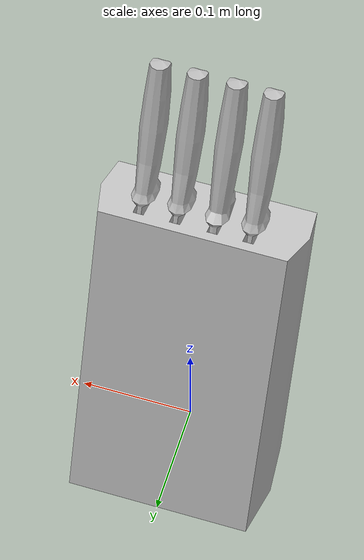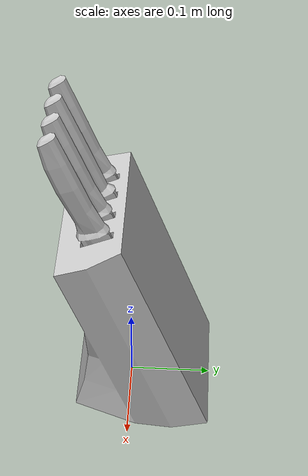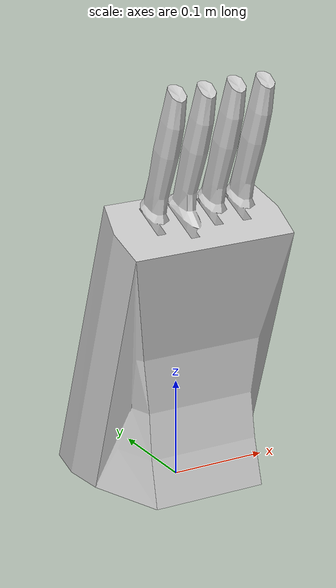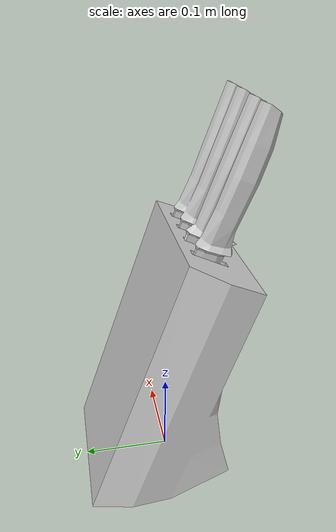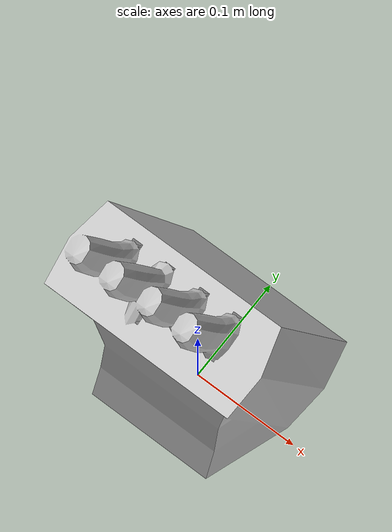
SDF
<?xml version='1.0'?>
<sdf version="1.4">
	<model name="knives">
		<static>1</static>
		<link name="link">
			<visual name="mesh">
				<geometry>
					<mesh>
						<uri>model://meshes/knives.dae</uri>
					</mesh>
				</geometry>
			</visual>
			<collision name="collider">
				<pose>0 0 0 0 0 0</pose>
				<geometry>
					<mesh>
						<uri>model://meshes/knives_collision.stl</uri>
					</mesh>
				</geometry>
			</collision>
		</link>
	</model>
</sdf>
